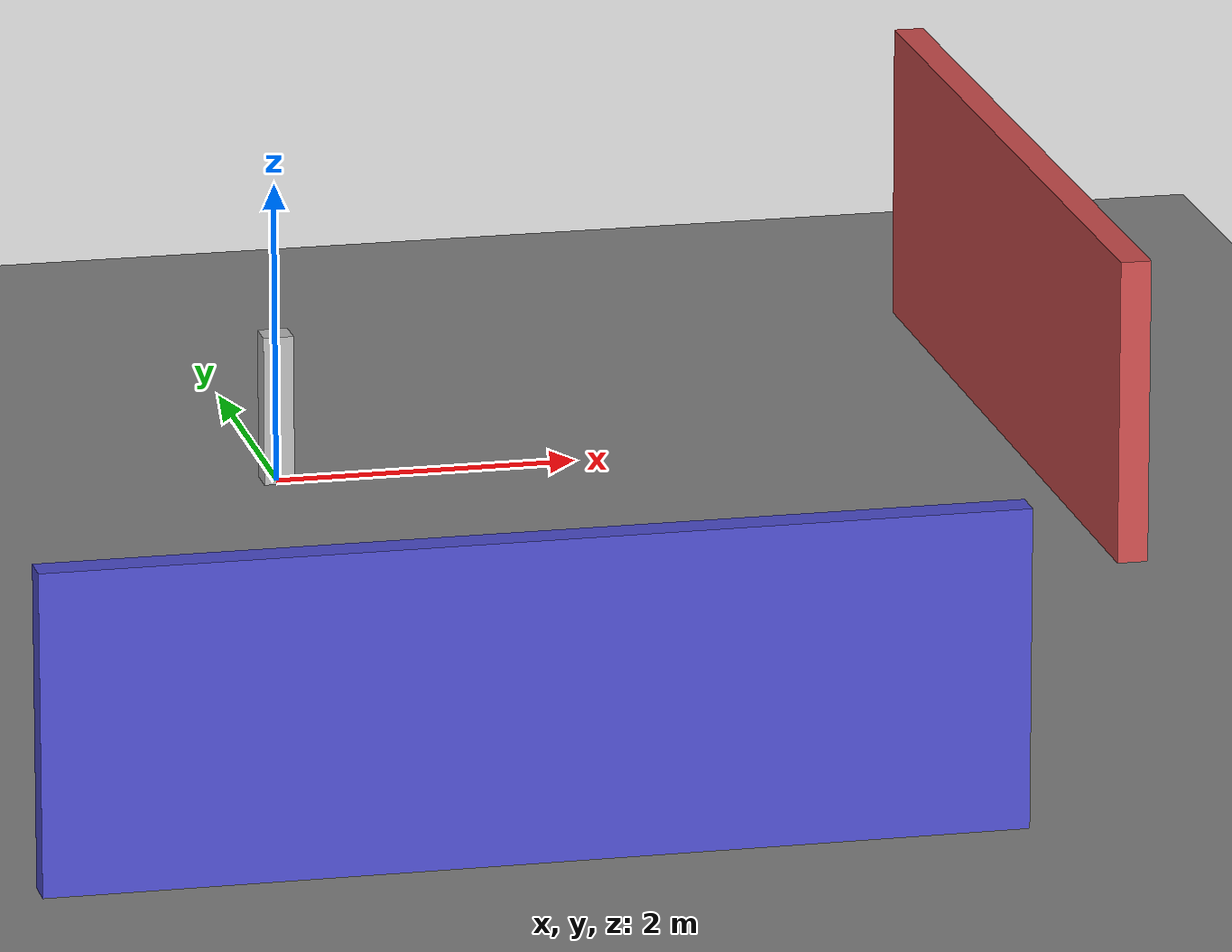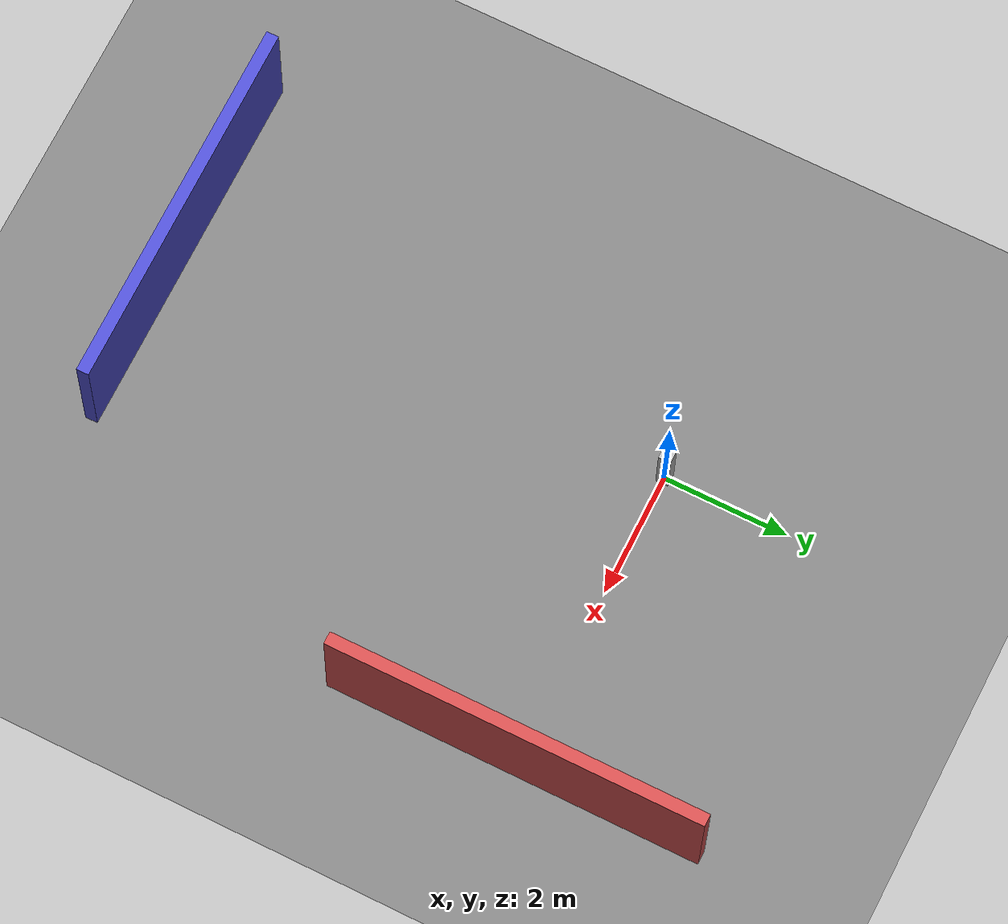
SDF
<?xml version="1.0" ?>
<sdf version="1.8">
  <world name="gate_a">

    <physics name="1ms" type="ignored">
      <max_step_size>0.001</max_step_size>
      <real_time_factor>1.0</real_time_factor>
    </physics>

    <plugin filename="ignition-gazebo-physics-system"
            name="ignition::gazebo::systems::Physics"/>
    <plugin filename="ignition-gazebo-scene-broadcaster-system"
            name="ignition::gazebo::systems::SceneBroadcaster"/>
    <!-- Without this plugin gpu_lidar produces nothing at all. -->
    <plugin filename="ignition-gazebo-sensors-system"
            name="ignition::gazebo::systems::Sensors">
      <render_engine>ogre2</render_engine>
    </plugin>

    <light type="directional" name="sun">
      <cast_shadows>false</cast_shadows>
      <pose>0 0 10 0 0 0</pose>
      <diffuse>0.8 0.8 0.8 1</diffuse>
      <specular>0.2 0.2 0.2 1</specular>
      <direction>-0.5 0.1 -0.9</direction>
    </light>

    <model name="ground_plane">
      <static>true</static>
      <link name="link">
        <collision name="collision">
          <geometry><plane><normal>0 0 1</normal><size>100 100</size></plane></geometry>
        </collision>
        <visual name="visual">
          <geometry><plane><normal>0 0 1</normal><size>100 100</size></plane></geometry>
          <material><ambient>0.3 0.3 0.3 1</ambient><diffuse>0.5 0.5 0.5 1</diffuse></material>
        </visual>
      </link>
    </model>

    <!-- Wall 5 m ahead (+x) -->
    <model name="wall_x">
      <static>true</static>
      <pose>5 0 1 0 0 0</pose>
      <link name="link">
        <collision name="collision">
          <geometry><box><size>0.2 6 2</size></box></geometry>
        </collision>
        <visual name="visual">
          <geometry><box><size>0.2 6 2</size></box></geometry>
          <material><ambient>0.7 0.2 0.2 1</ambient><diffuse>0.8 0.3 0.3 1</diffuse></material>
        </visual>
      </link>
    </model>

    <!-- Wall 8 m to the right (-y) -->
    <model name="wall_y">
      <static>true</static>
      <pose>0 -8 1 0 0 0</pose>
      <link name="link">
        <collision name="collision">
          <geometry><box><size>6 0.2 2</size></box></geometry>
        </collision>
        <visual name="visual">
          <geometry><box><size>6 0.2 2</size></box></geometry>
          <material><ambient>0.2 0.2 0.7 1</ambient><diffuse>0.3 0.3 0.8 1</diffuse></material>
        </visual>
      </link>
    </model>

    <!-- Static lidar post at the origin -->
    <model name="lidar_post">
      <static>true</static>
      <pose>0 0 0.5 0 0 0</pose>
      <link name="link">
        <collision name="collision">
          <geometry><box><size>0.2 0.2 1</size></box></geometry>
        </collision>
        <visual name="visual">
          <geometry><box><size>0.2 0.2 1</size></box></geometry>
        </visual>

        <sensor name="gpu_lidar" type="gpu_lidar">
          <!-- Above the post. At the link origin the sensor sits INSIDE the
               0.2 m box and every beam returns range_min. -->
          <pose>0 0 0.6 0 0 0</pose>
          <topic>lidar</topic>
          <update_rate>10</update_rate>
          <always_on>true</always_on>
          <visualize>true</visualize>
          <lidar>
            <scan>
              <horizontal>
                <samples>180</samples>
                <resolution>1</resolution>
                <min_angle>-2.356194</min_angle>   <!-- -135 deg -->
                <max_angle>2.356194</max_angle>    <!-- +135 deg -->
              </horizontal>
              <vertical>
                <samples>1</samples>
                <min_angle>0</min_angle>
                <max_angle>0</max_angle>
              </vertical>
            </scan>
            <range>
              <min>0.15</min>
              <max>30.0</max>
              <resolution>0.01</resolution>
            </range>
            <noise>
              <type>gaussian</type>
              <mean>0.0</mean>
              <stddev>0.02</stddev>
            </noise>
          </lidar>
        </sensor>
      </link>
    </model>

  </world>
</sdf>
